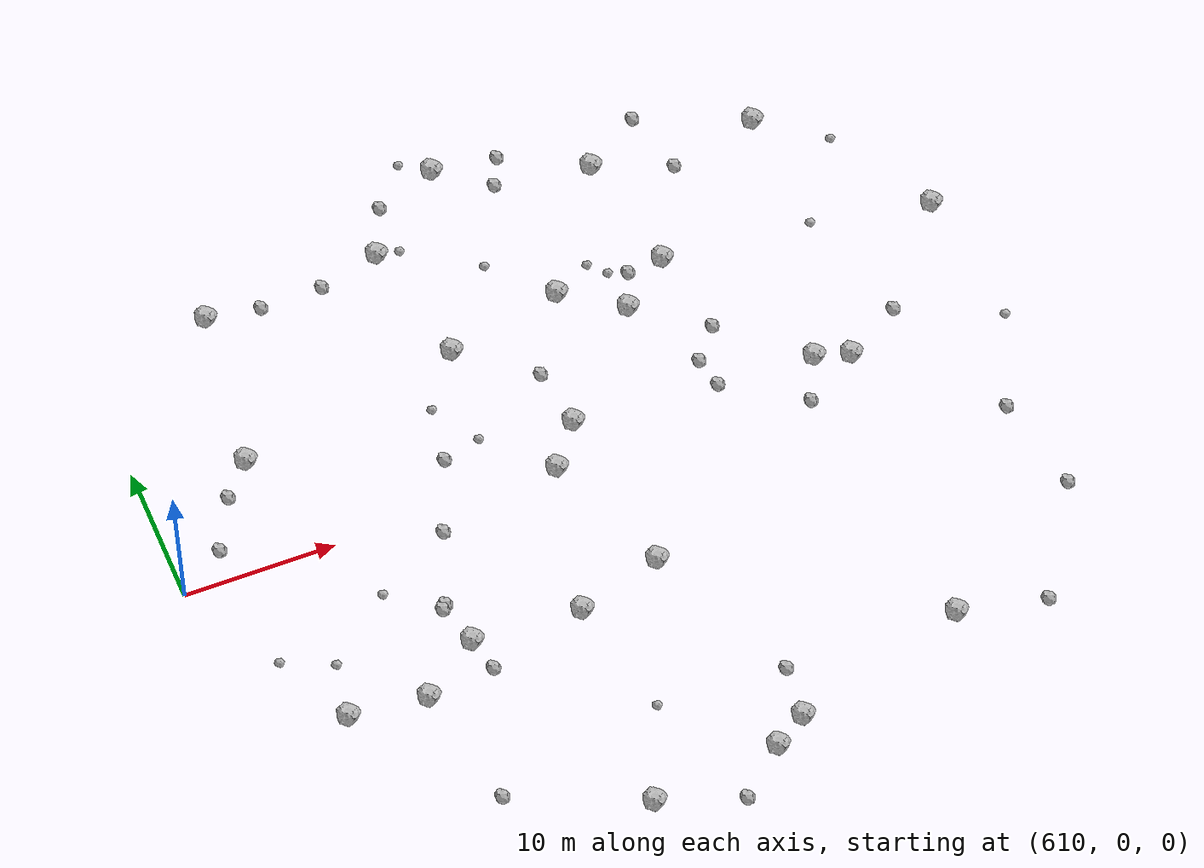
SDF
<sdf version="1.6">
 <world name="default">
  <include><uri>model://sun</uri></include>
  <model name="rock1_16_3">
   <include><uri>model://rock1</uri><pose>618.5696760299568 19.837321473934864 0.5 0 0 0</pose></include>
  </model>
  <model name="rock1_16_4">
   <include><uri>model://rock1</uri><pose>617.0468318860392 8.123407208638014 0.5 0 0 0</pose></include>
  </model>
  <model name="rock1_16_5">
   <include><uri>model://rock1</uri><pose>640.3041350209223 13.082582302793384 0.5 0 0 0</pose></include>
  </model>
  <model name="rock1_16_6">
   <include><uri>model://rock1</uri><pose>632.328998308856 -10.587996835463528 0.5 0 0 0</pose></include>
  </model>
  <model name="rock1_16_7">
   <include><uri>model://rock1</uri><pose>653.6045096864792 -19.590701968865456 0.5 0 0 0</pose></include>
  </model>
  <model name="rock1_16_8">
   <include><uri>model://rock1</uri><pose>630.6499592415632 20.547104428804182 0.5 0 0 0</pose></include>
  </model>
  <model name="rock1_16_9">
   <include><uri>model://rock1</uri><pose>636.5513172108958 25.79901583301433 0.5 0 0 0</pose></include>
  </model>
  <model name="rock1_16_10">
   <include><uri>model://rock1</uri><pose>637.3440533938478 3.0543778586417645 0.5 0 0 0</pose></include>
  </model>
  <model name="rock1_16_11">
   <include><uri>model://rock1</uri><pose>665.9415339054649 10.668636113334962 0.5 0 0 0</pose></include>
  </model>
  <model name="rock1_16_12">
   <include><uri>model://rock1</uri><pose>635.0114813820852 0.0799186702261423 0.5 0 0 0</pose></include>
  </model>
  <model name="rock1_16_13">
   <include><uri>model://rock1</uri><pose>646.4574202486074 22.15735621078612 0.5 0 0 0</pose></include>
  </model>
  <model name="rock1_16_14">
   <include><uri>model://rock1</uri><pose>639.4811793927183 -24.353208502046385 0.5 0 0 0</pose></include>
  </model>
  <model name="rock1_16_15">
   <include><uri>model://rock1</uri><pose>655.9105930527692 1.2422105239536059 0.5 0 0 0</pose></include>
  </model>
  <model name="rock1_16_16">
   <include><uri>model://rock1</uri><pose>632.2677147659582 11.272968546319191 0.5 0 0 0</pose></include>
  </model>
  <model name="rock1_16_17">
   <include><uri>model://rock1</uri><pose>641.7547568344557 -22.9434988829983 0.5 0 0 0</pose></include>
  </model>
  <model name="rock1_16_18">
   <include><uri>model://rock1</uri><pose>621.2341223628206 -13.00092884558456 0.5 0 0 0</pose></include>
  </model>
  <model name="rock1_16_19">
   <include><uri>model://rock1</uri><pose>657.9155781951001 21.708716999250257 0.5 0 0 0</pose></include>
  </model>
  <model name="rock1_16_20">
   <include><uri>model://rock1</uri><pose>653.6286609288641 1.9928796666798902 0.5 0 0 0</pose></include>
  </model>
  <model name="rock1_16_21">
   <include><uri>model://rock1</uri><pose>638.0852747038143 -8.852875463762796 0.5 0 0 0</pose></include>
  </model>
  <model name="rock1_16_22">
   <include><uri>model://rock1</uri><pose>616.1917608452194 -12.433744949738099 0.5 0 0 0</pose></include>
  </model>
  <model name="rock1_16_23">
   <include><uri>model://rock1</uri><pose>625.1903144566352 -10.15010182554391 0.5 0 0 0</pose></include>
  </model>
  <model name="rock1_16_24">
   <include><uri>model://rock1</uri><pose>644.1370818873095 10.25177322237488 0.5 0 0 0</pose></include>
  </model>
  <model name="rock1_16_25">
   <include><uri>model://rock1</uri><pose>647.7603089455583 13.138859596241431 0.5 0 0 0</pose></include>
  </model>
  <model name="rock1_16_26">
   <include><uri>model://rock1</uri><pose>631.0124780155733 -25.165843424813872 0.5 0 0 0</pose></include>
  </model>
  <model name="rock2_16_0">
   <include><uri>model://rock2</uri><pose>648.5375859396121 6.839021624633013 0.3 0 0 0</pose></include>
  </model>
  <model name="rock2_16_1">
   <include><uri>model://rock2</uri><pose>632.2032234990153 24.211976324666473 0.3 0 0 0</pose></include>
  </model>
  <model name="rock2_16_2">
   <include><uri>model://rock2</uri><pose>624.6339863698989 -6.930916052602743 0.3 0 0 0</pose></include>
  </model>
  <model name="rock2_16_3">
   <include><uri>model://rock2</uri><pose>650.5413837313976 24.96313275675486 0.3 0 0 0</pose></include>
  </model>
  <model name="rock2_16_4">
   <include><uri>model://rock2</uri><pose>664.2920108780343 -13.18078533337697 0.3 0 0 0</pose></include>
  </model>
  <model name="rock2_16_5">
   <include><uri>model://rock2</uri><pose>636.8237888221582 7.419939659610392 0.3 0 0 0</pose></include>
  </model>
  <model name="rock2_16_6">
   <include><uri>model://rock2</uri><pose>613.1265299091299 2.2605096450852997 0.3 0 0 0</pose></include>
  </model>
  <model name="rock2_16_7">
   <include><uri>model://rock2</uri><pose>659.9112714941842 3.637632765423213 0.3 0 0 0</pose></include>
  </model>
  <model name="rock2_16_8">
   <include><uri>model://rock2</uri><pose>659.2848074429919 -20.79589900799289 0.3 0 0 0</pose></include>
  </model>
  <model name="rock2_16_9">
   <include><uri>model://rock2</uri><pose>651.9667975847623 -1.1262682157213604 0.3 0 0 0</pose></include>
  </model>
  <model name="rock2_16_10">
   <include><uri>model://rock2</uri><pose>628.640011187494 3.444098934988318 0.3 0 0 0</pose></include>
  </model>
  <model name="rock2_16_11">
   <include><uri>model://rock2</uri><pose>639.9122236831288 23.154363019388818 0.3 0 0 0</pose></include>
  </model>
  <model name="rock2_16_12">
   <include><uri>model://rock2</uri><pose>622.6591733886555 -21.313710487092422 0.3 0 0 0</pose></include>
  </model>
  <model name="rock2_16_13">
   <include><uri>model://rock2</uri><pose>626.5370316836452 -1.7453932625701611 0.3 0 0 0</pose></include>
  </model>
  <model name="rock2_16_14">
   <include><uri>model://rock2</uri><pose>622.132937645102 19.361705026950922 0.3 0 0 0</pose></include>
  </model>
  <model name="rock2_16_15">
   <include><uri>model://rock2</uri><pose>646.6364747983166 4.5643254923224745 0.3 0 0 0</pose></include>
  </model>
  <model name="rock2_16_16">
   <include><uri>model://rock2</uri><pose>645.2205789282258 12.977493087536068 0.3 0 0 0</pose></include>
  </model>
  <model name="rock2_16_17">
   <include><uri>model://rock2</uri><pose>646.9944854354246 2.3361757035596966 0.3 0 0 0</pose></include>
  </model>
  <model name="rock2_16_18">
   <include><uri>model://rock2</uri><pose>651.5355546241835 20.15289011412846 0.3 0 0 0</pose></include>
  </model>
  <model name="rock2_16_19">
   <include><uri>model://rock2</uri><pose>615.0035087379291 5.897371864126171 0.3 0 0 0</pose></include>
  </model>
  <model name="rock2_16_20">
   <include><uri>model://rock2</uri><pose>625.6333571725478 -12.460568971680377 0.3 0 0 0</pose></include>
  </model>
  <model name="rock2_16_21">
   <include><uri>model://rock2</uri><pose>642.1782769552568 -19.340574977328046 0.3 0 0 0</pose></include>
  </model>
  <model name="rock2_16_22">
   <include><uri>model://rock2</uri><pose>636.2353760980501 -27.012398951666746 0.3 0 0 0</pose></include>
  </model>
  <model name="rock2_16_23">
   <include><uri>model://rock2</uri><pose>663.2995452926555 -6.327115771646131 0.3 0 0 0</pose></include>
  </model>
  <model name="rock2_16_24">
   <include><uri>model://rock2</uri><pose>624.3562817073386 -7.210803251636136 0.3 0 0 0</pose></include>
  </model>
  <model name="rock2_16_25">
   <include><uri>model://rock2</uri><pose>626.3732181207165 19.451024147997252 0.3 0 0 0</pose></include>
  </model>
  <model name="rock2_16_26">
   <include><uri>model://rock2</uri><pose>640.93642557962 25.299429596792812 0.3 0 0 0</pose></include>
  </model>
  <model name="rock3_16_0">
   <include><uri>model://rock3</uri><pose>636.7875236067731 17.044571467643983 0.2 0 0 0</pose></include>
  </model>
  <model name="rock3_16_1">
   <include><uri>model://rock3</uri><pose>657.8938372357632 12.271743490844301 0.2 0 0 0</pose></include>
  </model>
  <model name="rock3_16_2">
   <include><uri>model://rock3</uri><pose>632.129351061789 20.337422189196218 0.2 0 0 0</pose></include>
  </model>
  <model name="rock3_16_3">
   <include><uri>model://rock3</uri><pose>621.3302906427242 -4.760448778940823 0.2 0 0 0</pose></include>
  </model>
  <model name="rock3_16_4">
   <include><uri>model://rock3</uri><pose>642.9997929824661 14.592984617725705 0.2 0 0 0</pose></include>
  </model>
  <model name="rock3_16_5">
   <include><uri>model://rock3</uri><pose>634.671759094575 27.179908821413207 0.2 0 0 0</pose></include>
  </model>
  <model name="rock3_16_6">
   <include><uri>model://rock3</uri><pose>629.3580664870708 7.427072988289169 0.2 0 0 0</pose></include>
  </model>
  <model name="rock3_16_7">
   <include><uri>model://rock3</uri><pose>613.6572683436897 -7.092104181040398 0.2 0 0 0</pose></include>
  </model>
  <model name="rock3_16_8">
   <include><uri>model://rock3</uri><pose>616.8362777547145 -8.563335644559707 0.2 0 0 0</pose></include>
  </model>
  <model name="rock3_16_9">
   <include><uri>model://rock3</uri><pose>633.8312744732759 -18.826849363334503 0.2 0 0 0</pose></include>
  </model>
  <model name="rock3_16_10">
   <include><uri>model://rock3</uri><pose>662.0811077021078 18.36314755927784 0.2 0 0 0</pose></include>
  </model>
  <model name="rock3_16_11">
   <include><uri>model://rock3</uri><pose>644.0011945924325 13.43869478156406 0.2 0 0 0</pose></include>
  </model>
  <model name="rock3_16_12">
   <include><uri>model://rock3</uri><pose>631.2589445620943 4.1268990863803054 0.2 0 0 0</pose></include>
  </model>
  <model name="rock3_16_13">
   <include><uri>model://rock3</uri><pose>666.4371316318202 0.4807026003936521 0.2 0 0 0</pose></include>
  </model>
 </world>
</sdf>
